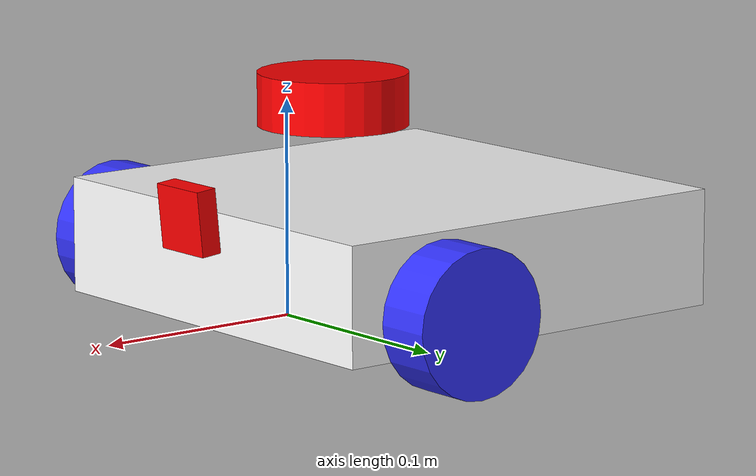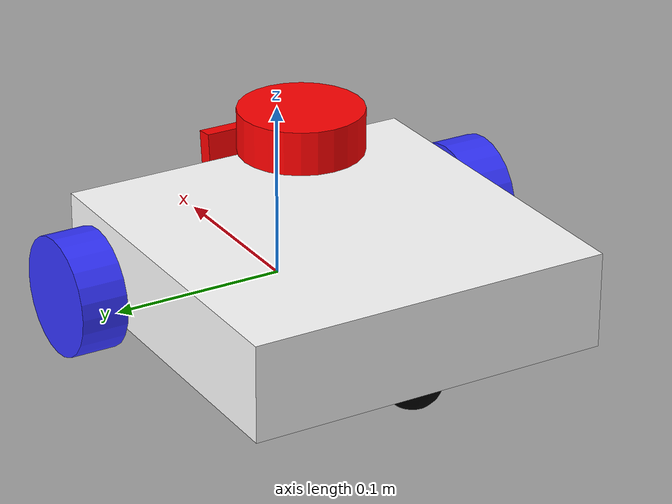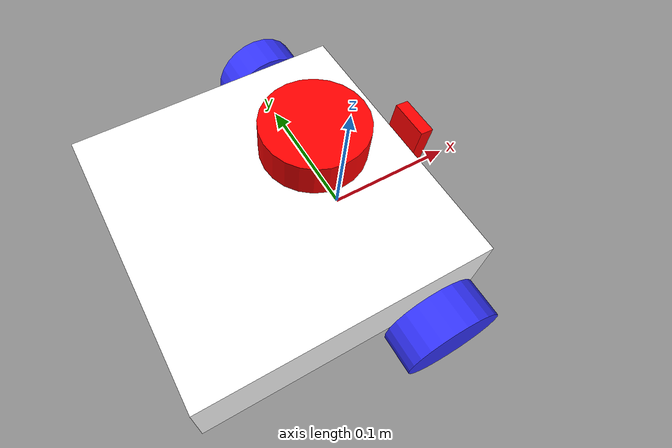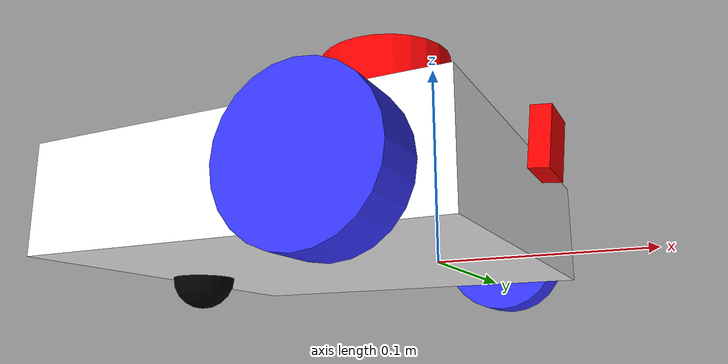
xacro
<?xml version="1.0"?>
<robot xmlns:xacro="http://www.ros.org/wiki/xacro"  name="robot">

    <xacro:arg name="sim_mode" default="false"/>

    <!-- Example link -->
    <xacro:include filename="robot_core.xacro" />

    <xacro:include filename="gazebo_control.xacro" /> <!-- Need to remove later? //CJS-->

    <!-- Lidar and Camera Telemetry -->
    <xacro:include filename="lidar.xacro" />
    <xacro:include filename="camera.xacro" />

</robot>

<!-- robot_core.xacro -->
<robot xmlns:xacro="http://www.ros.org/wiki/xacro"  >

    <xacro:include filename="inertial_macros.xacro"/>

    <!-- Pre-defined colors -->
    <material name="white">
        <color rgba="1 1 1 1"/>
    </material>

    <material name="orange">
        <color rgba="1 0.3 0.1 1"/>
    </material>

    <material name="blue">
        <color rgba="0.2 0.2 1 1"/>
    </material>

    <material name="black">
        <color rgba="0 0 0 1"/>
    </material>

    <material name="red">
        <color rgba="1 0 0 1"/>
    </material>

    <!-- END Pre-defined colors -->

    <!-- Base Link -->
    <link name="base_link">

    </link>

    <!-- Base Footprint Link -->
    <joint name="base_footprint_joint" type="fixed">
        <parent link="base_link"/>
        <child link="base_footprint"/>
        <origin xyz="0 0 0" rpy="0 0 0"/>
    </joint>

    <link name="base_footprint">
    </link>

    <!-- Chassis link -->
    <joint name="chassis_joint" type="fixed">
        <parent link="base_link"/>
        <child link="chassis"/>
        <origin xyz="-0.1624 0 0"/>
    </joint>

    <link name="chassis">
        <visual>
            <origin xyz="0.104 0 0.02725" rpy="0 0 0"/>
            <geometry>
                <box size="0.208 0.208 0.0545"/>
            </geometry>
            <material name="white"/>
        </visual>

        <collision>
            <origin xyz="0.104 0 0.02725" rpy="0 0 0"/>
            <geometry>
                <box size="0.208 0.208 0.0545"/>
            </geometry>
            <material name="white"/>
        </collision>

        <xacro:inertial_box mass="0.5" x="0.3" y="0.3" z="0.15">
            <origin xyz="0.15 0 0.075" rpy="0 0 0"/>
        </xacro:inertial_box>
    </link>

    <gazebo reference="chassis">
        <material>Gazebo/White</material>
    </gazebo>

    <!-- Left Wheel Link -->
    <joint name="left_wheel_joint" type="continuous">
        <parent link="base_link"/>
        <child link="left_wheel"/>
        <origin xyz="0 0.12315 0.019" rpy="-${pi/2} 0 0"/>
        <axis xyz="0 0 1"/>
    </joint>

    <link name="left_wheel">
        <visual>
            <geometry>
                <cylinder radius="0.03365" length="0.0267"/>/>
            </geometry>
            <material name="blue"/>
        </visual>

        <collision>
            <geometry>
                <cylinder radius="0.03365" length="0.0267"/>/>
            </geometry>
            <material name="blue"/>
        </collision>

        <xacro:inertial_cylinder mass="0.1" length="0.0267" radius="0.03365">
            <origin xyz="0 0 0" rpy="0 0 0"/>
        </xacro:inertial_cylinder>
    </link>

    <gazebo reference="left_wheel">
        <material>Gazebo/Blue</material>
    </gazebo>

    <!-- Right Wheel Link -->
    <joint name="right_wheel_joint" type="continuous">
        <parent link="base_link"/>
        <child link="right_wheel"/>
        <origin xyz="0 -0.12315 0.019" rpy="${pi/2} 0 0"/>
        <axis xyz="0 0 -1"/>
    </joint>

    <link name="right_wheel">
        <visual>
            <geometry>
                <cylinder length="0.0267" radius="0.03365" />/>
            </geometry>
            <material name="blue"/>
        </visual>

        <collision>
            <geometry>
                <cylinder length="0.0267" radius="0.03365" />/>
            </geometry>
            <material name="blue"/>
        </collision>

        <xacro:inertial_cylinder mass="0.1" length="0.0267" radius="0.03365">
            <origin xyz="0 0 0" rpy="0 0 0"/>
        </xacro:inertial_cylinder>
    </link>

    <gazebo reference="right_wheel">
        <material>Gazebo/Blue</material>
    </gazebo>

    <!-- Castor Wheel Link -->
    <joint name="castor_wheel_joint" type="fixed">
        <parent link="chassis"/>
        <child link="castor_wheel"/>
        <origin xyz="0.02 0 0"/>
    </joint>

    <link name="castor_wheel">
        <visual>
            <geometry>
                <sphere radius="0.0171"/>
            </geometry>
            <material name="black"/>
        </visual>

        <collision>
            <geometry>
                <sphere radius="0.0171"/>
            </geometry>
            <material name="black"/>
        </collision>

        <xacro:inertial_sphere mass="0.1" radius="0.0171">
            <origin xyz="0 0 0" rpy="0 0 0"/>
        </xacro:inertial_sphere>
    </link>

    <gazebo reference="castor_wheel">
        <material>Gazebo/Black</material>
        <mu1 value="0.001"/>
        <mu2 value="0.001"/>
    </gazebo>

</robot>

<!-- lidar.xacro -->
<robot xmlns:xacro="http://www.ros.org/wiki/xacro" >

    <joint name="laser_joint" type="fixed">
        <parent link="chassis"/>
        <child link="laser_frame"/>
        <origin xyz="0.13565 0 0.09775" rpy="0 0 ${pi}"/>
    </joint>

    <link name="laser_frame">
        <visual>
            <geometry>
                <cylinder radius="0.035" length="0.0245"/>
            </geometry>
            <material name="red"/>
        </visual>
        <collision>
            <geometry>
                <cylinder radius="0.035" length="0.0245"/>
            </geometry>
        </collision>
        <xacro:inertial_cylinder mass="0.1" length="0.0245" radius="0.035">
            <origin xyz="0 0 0" rpy="0 0 0"/>
        </xacro:inertial_cylinder>
    </link>

    <gazebo reference="laser_frame">
        <material>Gazebo/Red</material>

        <sensor name="laser" type="ray">
            <pose> 0 0 0 0 0 0 </pose>
            <visualize>false</visualize>
            <update_rate>10</update_rate>
            <ray>
                <scan>
                    <horizontal>
                        <samples>360</samples>
                        <min_angle>-3.14</min_angle>
                        <max_angle>3.14</max_angle>
                    </horizontal>
                </scan>
                <range>
                    <min>0.3</min>
                    <max>12</max>
                </range>
            </ray>
            <plugin name="laser_controller" filename="libgazebo_ros_ray_sensor.so">
                <ros>
                    <argument>~/out:=scan</argument>
                </ros>
                <output_type>sensor_msgs/LaserScan</output_type>
                <frame_name>laser_frame</frame_name>
            </plugin>
        </sensor>
    </gazebo>

</robot>

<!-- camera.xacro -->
<robot xmlns:xacro="http://www.ros.org/wiki/xacro" >

    <joint name="camera_joint" type="fixed">
        <parent link="chassis"/>
        <child link="camera_link"/>
        <origin xyz="0.218 0 0.052" rpy="0 0.1 0"/>
    </joint>

    <link name="camera_link">
        <visual>
            <geometry>
                <box size="0.010 0.03 0.03"/>
            </geometry>
            <material name="red"/>
        </visual>
    </link>

    <joint name="camera_optical_joint" type="fixed">
        <parent link="camera_link"/>
        <child link="camera_link_optical"/>
        <origin xyz="0 0 0" rpy="${-pi/2} 0 ${-pi/2}"/>
    </joint>

    <link name="camera_link_optical"></link>

    <gazebo reference="camera_link">
        <material>Gazebo/Red</material>

        <sensor name="camera" type="camera">
            <pose> 0 0 0 0 0 0 </pose>
            <visualize>true</visualize>
            <update_rate>10</update_rate>
            <camera>
                <horizontal_fov>1.089</horizontal_fov>
                <image>
                    <format>R8G8B8</format>
                    <width>640</width>
                    <height>480</height>
                </image>
                <clip>
                    <near>0.05</near>
                    <far>8.0</far>
                </clip>
            </camera>
            <plugin name="camera_controller" filename="libgazebo_ros_camera.so">
                <frame_name>camera_link_optical</frame_name>
            </plugin>
        </sensor>
    </gazebo>

</robot>
